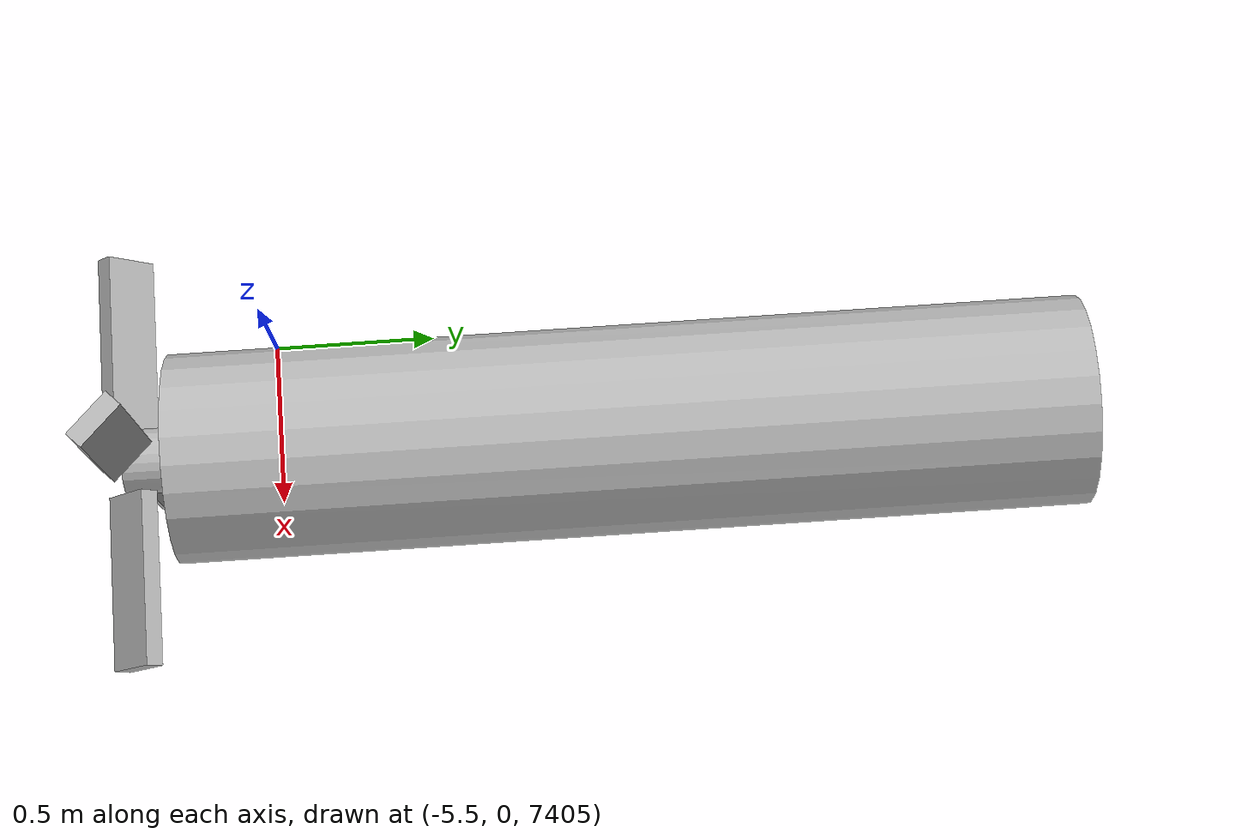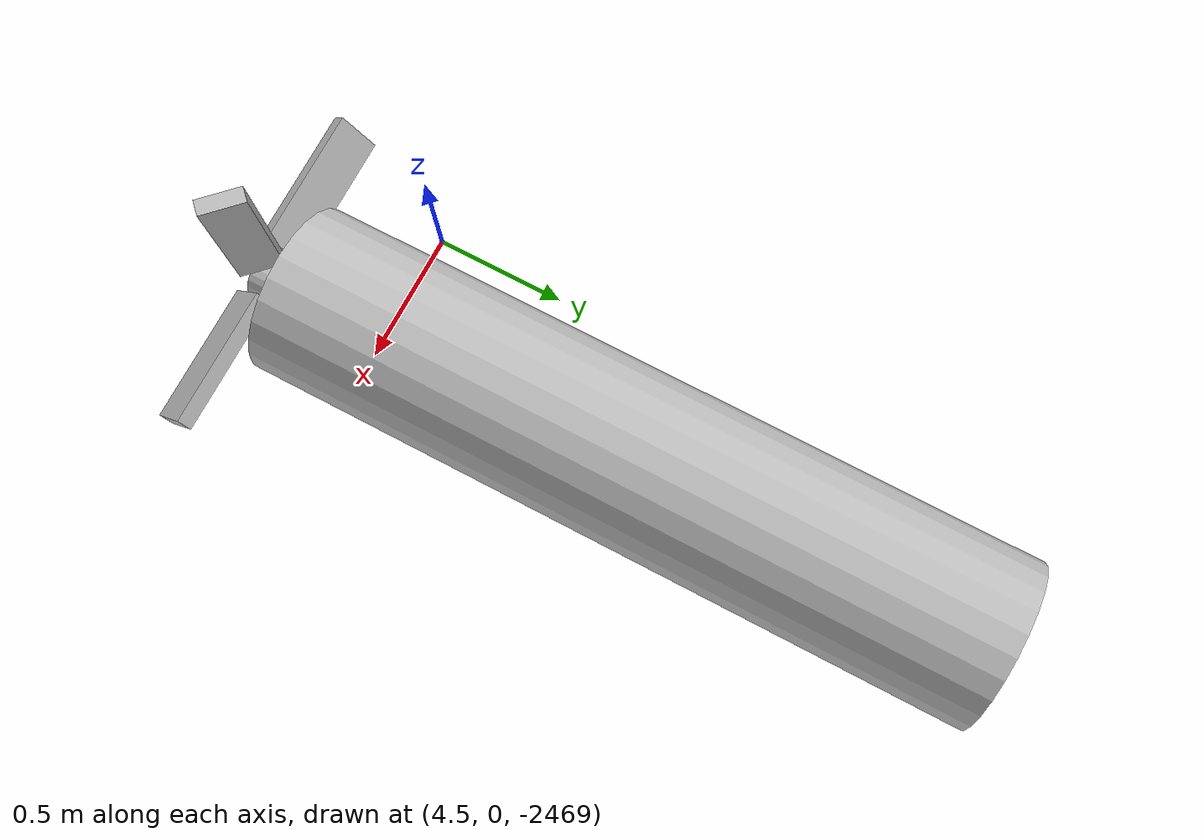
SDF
<?xml version="1.0" ?>
<sdf version='1.10'>
  <world name='buoyancy'>
    <physics name='1ms' type='ode'>
      <max_step_size>0.001</max_step_size>
      <real_time_factor>1</real_time_factor>
      <real_time_update_rate>1000</real_time_update_rate>
    </physics>
    <plugin name='gz::sim::systems::Physics' filename='gz-sim-physics-system'/>
    <plugin name='gz::sim::systems::UserCommands' filename='gz-sim-user-commands-system'/>
    <plugin name='gz::sim::systems::SceneBroadcaster' filename='gz-sim-scene-broadcaster-system'/>
    <plugin name='gz::sim::systems::Buoyancy' filename='gz-sim-buoyancy-system'>
      <uniform_fluid_density>1000</uniform_fluid_density>
    </plugin>
    <gravity>0 0 -9.8000000000000007</gravity>
    <magnetic_field>5.5644999999999998e-06 2.2875799999999999e-05 -4.2388400000000002e-05</magnetic_field>
    <atmosphere type='adiabatic'/>
    <scene>
      <ambient>0.400000006 0.400000006 0.400000006 1</ambient>
      <background>0.699999988 0.699999988 0.699999988 1</background>
      <shadows>true</shadows>
    </scene>
    <model name='submarine'>
      <pose>0 -2.5154627661000538e-07 -0.011387534481572691 1.5683925761171205 0 0</pose>
      <link name='body'>
        <pose>0 0 0 0 0 0</pose>
        <inertial>
          <mass>251.32741228718348</mass>
          <inertia>
            <ixx>86.289078218599656</ixx>
            <ixy>0</ixy>
            <ixz>0</ixz>
            <iyy>86.289078218599656</iyy>
            <iyz>0</iyz>
            <izz>5.0265482457436708</izz>
          </inertia>
          <pose>0 0 0 0 0 0</pose>
        </inertial>
        <visual name='body_visual'>
          <geometry>
            <cylinder>
              <radius>0.20000000000000001</radius>
              <length>2</length>
            </cylinder>
          </geometry>
        </visual>
        <collision name='body_collision'>
          <geometry>
            <cylinder>
              <radius>0.20000000000000001</radius>
              <length>2</length>
            </cylinder>
          </geometry>
          <surface>
            <friction>
              <ode/>
            </friction>
            <bounce/>
            <contact/>
          </surface>
        </collision>
        <visual name='spacer_visual'>
          <pose>0 0 1.0585500000000001 0 0 0</pose>
          <geometry>
            <cylinder>
              <radius>0.093340199999999998</radius>
              <length>0.12721099999999999</length>
            </cylinder>
          </geometry>
        </visual>
        <enable_wind>false</enable_wind>
      </link>
      <link name='propeller'>
        <pose>0 3.903127820947816e-16 1.0900000000000001 3.141589999999999 0 0</pose>
        <inertial>
          <mass>21.820000000000004</mass>
          <inertia>
            <ixx>0.45999415237916674</ixx>
            <ixy>0</ixy>
            <ixz>0</ixz>
            <iyy>0.45999415237916674</iyy>
            <iyz>0</iyz>
            <izz>0.90916666666666679</izz>
          </inertia>
          <pose>0 0 0 0 0 0</pose>
        </inertial>
        <visual name='blade1_visual'>
          <pose>0.34334019999999998 0 0 -0.78539816339744839 0 0</pose>
          <geometry>
            <box>
              <size>0.5 0.20000000000000001 0.054550000000000001</size>
            </box>
          </geometry>
        </visual>
        <collision name='blade1_collision'>
          <pose>0.34334019999999998 0 0 -0.78539816339744839 0 0</pose>
          <geometry>
            <box>
              <size>0.5 0.20000000000000001 0.054550000000000001</size>
            </box>
          </geometry>
          <surface>
            <friction>
              <ode/>
            </friction>
            <bounce/>
            <contact/>
          </surface>
        </collision>
        <visual name='blade2_visual'>
          <pose>0 0.34334019999999998 0 -0.78539816339744828 0 1.5707963267948966</pose>
          <geometry>
            <box>
              <size>0.5 0.20000000000000001 0.054550000000000001</size>
            </box>
          </geometry>
        </visual>
        <collision name='blade2_collision'>
          <pose>0 0.34334019999999998 0 -0.78539816339744828 0 1.5707963267948966</pose>
          <geometry>
            <box>
              <size>0.5 0.20000000000000001 0.054550000000000001</size>
            </box>
          </geometry>
          <surface>
            <friction>
              <ode/>
            </friction>
            <bounce/>
            <contact/>
          </surface>
        </collision>
        <visual name='blade3_visual'>
          <pose>-0.34334019999999998 0 0 0.78539816339744839 0 0</pose>
          <geometry>
            <box>
              <size>0.5 0.20000000000000001 0.054550000000000001</size>
            </box>
          </geometry>
        </visual>
        <collision name='blade3_collision'>
          <pose>-0.34334019999999998 0 0 0.78539816339744839 0 0</pose>
          <geometry>
            <box>
              <size>0.5 0.20000000000000001 0.054550000000000001</size>
            </box>
          </geometry>
          <surface>
            <friction>
              <ode/>
            </friction>
            <bounce/>
            <contact/>
          </surface>
        </collision>
        <visual name='blade4_visual'>
          <pose>0 -0.34334019999999998 0 0.78539816339744828 0 1.5707963267948966</pose>
          <geometry>
            <box>
              <size>0.5 0.20000000000000001 0.054550000000000001</size>
            </box>
          </geometry>
        </visual>
        <collision name='blade4_collision'>
          <pose>0 -0.34334019999999998 0 0.78539816339744828 0 1.5707963267948966</pose>
          <geometry>
            <box>
              <size>0.5 0.20000000000000001 0.054550000000000001</size>
            </box>
          </geometry>
          <surface>
            <friction>
              <ode/>
            </friction>
            <bounce/>
            <contact/>
          </surface>
        </collision>
        <enable_wind>false</enable_wind>
      </link>
      <joint name='propeller_joint' type='revolute'>
        <parent>body</parent>
        <child>propeller</child>
        <axis>
          <xyz>0 2.65358979335273e-06 -0.99999999999647926</xyz>
          <limit>
            <lower>-1000000000000</lower>
            <upper>1000000000000</upper>
            <effort>inf</effort>
            <velocity>inf</velocity>
            <stiffness>100000000</stiffness>
            <dissipation>1</dissipation>
          </limit>
          <dynamics>
            <spring_reference>0</spring_reference>
            <spring_stiffness>0</spring_stiffness>
            <damping>0</damping>
            <friction>0</friction>
          </dynamics>
        </axis>
        <pose>0 0 0 0 0 0</pose>
      </joint>
      <plugin name='gz::sim::systems::ApplyJointForce' filename='gz-sim-apply-joint-force-system'>
        <joint_name>propeller_joint</joint_name>
      </plugin>
      <plugin name='gz::sim::systems::LiftDrag' filename='gz-sim-lift-drag-system'>
        <air_density>1000</air_density>
        <cla>1.2535816618911175</cla>
        <cla_stall>-1.4326647564469914</cla_stall>
        <cda>0</cda>
        <cda_stall>1.4326647564469914</cda_stall>
        <alpha_stall>1.396</alpha_stall>
        <a0>0</a0>
        <area>0.27637</area>
        <upward>0 -0.7071067811865476 -0.7071067811865475</upward>
        <forward>0 -0.7071067811865475 0.7071067811865476</forward>
        <link_name>propeller</link_name>
        <cp>0.35 0 0</cp>
      </plugin>
      <plugin name='gz::sim::systems::LiftDrag' filename='gz-sim-lift-drag-system'>
        <air_density>1000</air_density>
        <cla>1.2535816618911175</cla>
        <cla_stall>-1.4326647564469914</cla_stall>
        <cda>0</cda>
        <cda_stall>1.4326647564469914</cda_stall>
        <alpha_stall>1.396</alpha_stall>
        <a0>0</a0>
        <area>0.27637</area>
        <upward>-0.7071067811865475 0 -0.7071067811865476</upward>
        <forward>-0.7071067811865476 0 0.7071067811865475</forward>
        <link_name>propeller</link_name>
        <cp>0 -0.35 0</cp>
      </plugin>
      <plugin name='gz::sim::systems::LiftDrag' filename='gz-sim-lift-drag-system'>
        <air_density>1000</air_density>
        <cla>1.2535816618911175</cla>
        <cla_stall>-1.4326647564469914</cla_stall>
        <cda>0</cda>
        <cda_stall>1.4326647564469914</cda_stall>
        <alpha_stall>1.396</alpha_stall>
        <a0>0</a0>
        <area>0.27637</area>
        <upward>0 0.7071067811865475 -0.7071067811865476</upward>
        <forward>0 -0.7071067811865476 -0.7071067811865475</forward>
        <link_name>propeller</link_name>
        <cp>-0.35 0 0</cp>
      </plugin>
      <plugin name='gz::sim::systems::LiftDrag' filename='gz-sim-lift-drag-system'>
        <air_density>1000</air_density>
        <cla>1.2535816618911175</cla>
        <cla_stall>-1.4326647564469914</cla_stall>
        <cda>0</cda>
        <cda_stall>1.4326647564469914</cda_stall>
        <alpha_stall>1.396</alpha_stall>
        <a0>0</a0>
        <area>0.27637</area>
        <upward>0.7071067811865476 0 -0.7071067811865475</upward>
        <forward>0.7071067811865475 0 0.7071067811865476</forward>
        <link_name>propeller</link_name>
        <cp>0 0.35 0</cp>
      </plugin>
      <static>false</static>
      <self_collide>false</self_collide>
    </model>
    <model name='submarine_sinking'>
      <pose>5 8.4598549054959449e-08 -2468.5894671012911 1.5711976583255125 0 0</pose>
      <link name='body'>
        <pose>0 0 -1.07935 0 0 0</pose>
        <inertial>
          <mass>1102.6990214100174</mass>
          <inertia>
            <ixx>645.99784337603535</ixx>
            <ixy>0</ixy>
            <ixz>0</ixz>
            <iyy>645.99784337603535</iyy>
            <iyz>0</iyz>
            <izz>49.621455963450778</izz>
          </inertia>
          <pose>0 0 0 0 0 0</pose>
        </inertial>
        <visual name='body_visual'>
          <geometry>
            <cylinder>
              <radius>0.29999999999999999</radius>
              <length>2.6000000000000001</length>
            </cylinder>
          </geometry>
        </visual>
        <collision name='body_collision'>
          <geometry>
            <cylinder>
              <radius>0.29999999999999999</radius>
              <length>2.6000000000000001</length>
            </cylinder>
          </geometry>
          <surface>
            <friction>
              <ode/>
            </friction>
            <bounce/>
            <contact/>
          </surface>
        </collision>
        <visual name='spacer_visual'>
          <pose>0 0 1.378546 0 0 0</pose>
          <geometry>
            <cylinder>
              <radius>0.093340199999999998</radius>
              <length>0.12721099999999999</length>
            </cylinder>
          </geometry>
        </visual>
        <enable_wind>false</enable_wind>
      </link>
      <link name='propeller'>
        <pose>0 0 0.34550000000012915 3.1415899999999994 0 0</pose>
        <inertial>
          <mass>25.2312297</mass>
          <inertia>
            <ixx>0.53190733819136371</ixx>
            <ixy>0</ixy>
            <ixz>0</ixz>
            <iyy>0.53190733819136371</iyy>
            <iyz>0</iyz>
            <izz>1.0513012374999999</izz>
          </inertia>
          <pose>0 0 0 0 0 0</pose>
        </inertial>
        <visual name='blade1_visual'>
          <pose>0.34334019999999998 0 0 -0.78539816339744839 0 0</pose>
          <geometry>
            <box>
              <size>0.5 0.15417800000000001 0.054550000000000001</size>
            </box>
          </geometry>
        </visual>
        <collision name='blade1_collision'>
          <pose>0.34334019999999998 0 0 -0.78539816339744839 0 0</pose>
          <geometry>
            <box>
              <size>0.5 0.15417800000000001 0.054550000000000001</size>
            </box>
          </geometry>
          <surface>
            <friction>
              <ode/>
            </friction>
            <bounce/>
            <contact/>
          </surface>
        </collision>
        <visual name='blade2_visual'>
          <pose>0 0.34334019999999998 0 -0.78539816339744828 0 1.5707963267948966</pose>
          <geometry>
            <box>
              <size>0.5 0.15417800000000001 0.054550000000000001</size>
            </box>
          </geometry>
        </visual>
        <collision name='blade2_collision'>
          <pose>0 0.34334019999999998 0 -0.78539816339744828 0 1.5707963267948966</pose>
          <geometry>
            <box>
              <size>0.5 0.15417800000000001 0.054550000000000001</size>
            </box>
          </geometry>
          <surface>
            <friction>
              <ode/>
            </friction>
            <bounce/>
            <contact/>
          </surface>
        </collision>
        <visual name='blade3_visual'>
          <pose>-0.34334019999999998 0 0 0.78539816339744839 0 0</pose>
          <geometry>
            <box>
              <size>0.5 0.15417800000000001 0.054550000000000001</size>
            </box>
          </geometry>
        </visual>
        <collision name='blade3_collision'>
          <pose>-0.34334019999999998 0 0 0.78539816339744839 0 0</pose>
          <geometry>
            <box>
              <size>0.5 0.15417800000000001 0.054550000000000001</size>
            </box>
          </geometry>
          <surface>
            <friction>
              <ode/>
            </friction>
            <bounce/>
            <contact/>
          </surface>
        </collision>
        <visual name='blade4_visual'>
          <pose>0 -0.34334019999999998 0 0.78539816339744828 0 1.5707963267948966</pose>
          <geometry>
            <box>
              <size>0.5 0.15417800000000001 0.054550000000000001</size>
            </box>
          </geometry>
        </visual>
        <collision name='blade4_collision'>
          <pose>0 -0.34334019999999998 0 -0.78539816339744828 0 1.5707963267948966</pose>
          <geometry>
            <box>
              <size>0.5 0.15417800000000001 0.054550000000000001</size>
            </box>
          </geometry>
          <surface>
            <friction>
              <ode/>
            </friction>
            <bounce/>
            <contact/>
          </surface>
        </collision>
        <enable_wind>false</enable_wind>
      </link>
      <joint name='propeller_joint' type='revolute'>
        <parent>body</parent>
        <child>propeller</child>
        <axis>
          <xyz>0 2.65358979335273e-06 -0.99999999999647926</xyz>
          <limit>
            <lower>-1000000000000</lower>
            <upper>1000000000000</upper>
            <effort>inf</effort>
            <velocity>inf</velocity>
            <stiffness>100000000</stiffness>
            <dissipation>1</dissipation>
          </limit>
          <dynamics>
            <spring_reference>0</spring_reference>
            <spring_stiffness>0</spring_stiffness>
            <damping>0</damping>
            <friction>0</friction>
          </dynamics>
        </axis>
        <pose>0 -1.05879e-22 5.5511199999999995e-17 0 0 0</pose>
      </joint>
      <static>false</static>
      <self_collide>false</self_collide>
    </model>
    <model name='submarine_buoyant'>
      <pose>-5 7.589583461697913e-07 7405.7776682934627 1.5720003213341212 0 0</pose>
      <link name='body'>
        <pose>0 0 -1.07935 0 0 0</pose>
        <inertial>
          <mass>367.5663404700058</mass>
          <inertia>
            <ixx>215.33261445867842</ixx>
            <ixy>0</ixy>
            <ixz>0</ixz>
            <iyy>215.33261445867842</iyy>
            <iyz>0</iyz>
            <izz>16.54048532115026</izz>
          </inertia>
          <pose>0 0 0 0 0 0</pose>
        </inertial>
        <visual name='body_visual'>
          <geometry>
            <cylinder>
              <radius>0.29999999999999999</radius>
              <length>2.6000000000000001</length>
            </cylinder>
          </geometry>
        </visual>
        <collision name='body_collision'>
          <geometry>
            <cylinder>
              <radius>0.29999999999999999</radius>
              <length>2.6000000000000001</length>
            </cylinder>
          </geometry>
          <surface>
            <friction>
              <ode/>
            </friction>
            <bounce/>
            <contact/>
          </surface>
        </collision>
        <visual name='spacer_visual'>
          <pose>0 0 1.378546 0 0 0</pose>
          <geometry>
            <cylinder>
              <radius>0.093340199999999998</radius>
              <length>0.12721099999999999</length>
            </cylinder>
          </geometry>
        </visual>
        <enable_wind>false</enable_wind>
      </link>
      <link name='propeller'>
        <pose>0 0 0.34549999999990177 3.1415899999999994 0 0</pose>
        <inertial>
          <mass>8.4104099000000012</mass>
          <inertia>
            <ixx>0.17730244606378792</ixx>
            <ixy>0</ixy>
            <ixz>0</ixz>
            <iyy>0.17730244606378792</iyy>
            <iyz>0</iyz>
            <izz>0.35043374583333337</izz>
          </inertia>
          <pose>0 0 0 0 0 0</pose>
        </inertial>
        <visual name='blade1_visual'>
          <pose>0.34334019999999998 0 0 -0.78539816339744839 0 0</pose>
          <geometry>
            <box>
              <size>0.5 0.15417800000000001 0.054550000000000001</size>
            </box>
          </geometry>
        </visual>
        <collision name='blade1_collision'>
          <pose>0.34334019999999998 0 0 -0.78539816339744839 0 0</pose>
          <geometry>
            <box>
              <size>0.5 0.15417800000000001 0.054550000000000001</size>
            </box>
          </geometry>
          <surface>
            <friction>
              <ode/>
            </friction>
            <bounce/>
            <contact/>
          </surface>
        </collision>
        <visual name='blade2_visual'>
          <pose>0 0.34334019999999998 0 -0.78539816339744828 0 1.5707963267948966</pose>
          <geometry>
            <box>
              <size>0.5 0.15417800000000001 0.054550000000000001</size>
            </box>
          </geometry>
        </visual>
        <collision name='blade2_collision'>
          <pose>0 0.34334019999999998 0 -0.78539816339744828 0 1.5707963267948966</pose>
          <geometry>
            <box>
              <size>0.5 0.15417800000000001 0.054550000000000001</size>
            </box>
          </geometry>
          <surface>
            <friction>
              <ode/>
            </friction>
            <bounce/>
            <contact/>
          </surface>
        </collision>
        <visual name='blade3_visual'>
          <pose>-0.34334019999999998 0 0 0.78539816339744839 0 0</pose>
          <geometry>
            <box>
              <size>0.5 0.15417800000000001 0.054550000000000001</size>
            </box>
          </geometry>
        </visual>
        <collision name='blade3_collision'>
          <pose>-0.34334019999999998 0 0 0.78539816339744839 0 0</pose>
          <geometry>
            <box>
              <size>0.5 0.15417800000000001 0.054550000000000001</size>
            </box>
          </geometry>
          <surface>
            <friction>
              <ode/>
            </friction>
            <bounce/>
            <contact/>
          </surface>
        </collision>
        <visual name='blade4_visual'>
          <pose>0 -0.34334019999999998 0 0.78539816339744828 0 1.5707963267948966</pose>
          <geometry>
            <box>
              <size>0.5 0.15417800000000001 0.054550000000000001</size>
            </box>
          </geometry>
        </visual>
        <collision name='blade4_collision'>
          <pose>0 -0.34334019999999998 0 0.78539816339744828 0 1.5707963267948966</pose>
          <geometry>
            <box>
              <size>0.5 0.15417800000000001 0.054550000000000001</size>
            </box>
          </geometry>
          <surface>
            <friction>
              <ode/>
            </friction>
            <bounce/>
            <contact/>
          </surface>
        </collision>
        <enable_wind>false</enable_wind>
      </link>
      <joint name='propeller_joint' type='revolute'>
        <parent>body</parent>
        <child>propeller</child>
        <axis>
          <xyz>0 2.65358979335273e-06 -0.99999999999647926</xyz>
          <limit>
            <lower>-1000000000000</lower>
            <upper>1000000000000</upper>
            <effort>inf</effort>
            <velocity>inf</velocity>
            <stiffness>100000000</stiffness>
            <dissipation>1</dissipation>
          </limit>
          <dynamics>
            <spring_reference>0</spring_reference>
            <spring_stiffness>0</spring_stiffness>
            <damping>0</damping>
            <friction>0</friction>
          </dynamics>
        </axis>
        <pose>0 -1.05879e-22 5.5511199999999995e-17 0 0 0</pose>
      </joint>
      <static>false</static>
      <self_collide>false</self_collide>
    </model>
    <light name='sun' type='directional'>
      <pose>0 0 10 0 0 0</pose>
      <cast_shadows>true</cast_shadows>
      <intensity>1</intensity>
      <direction>-0.5 0.10000000000000001 -0.90000000000000002</direction>
      <diffuse>1 1 1 1</diffuse>
      <specular>0.5 0.5 0.5 1</specular>
      <attenuation>
        <range>1000</range>
        <linear>0.0099999997764825821</linear>
        <constant>0.89999997615814209</constant>
        <quadratic>0.0010000000474974513</quadratic>
      </attenuation>
      <spot>
        <inner_angle>0</inner_angle>
        <outer_angle>0</outer_angle>
        <falloff>0</falloff>
      </spot>
    </light>
  </world>
</sdf>
